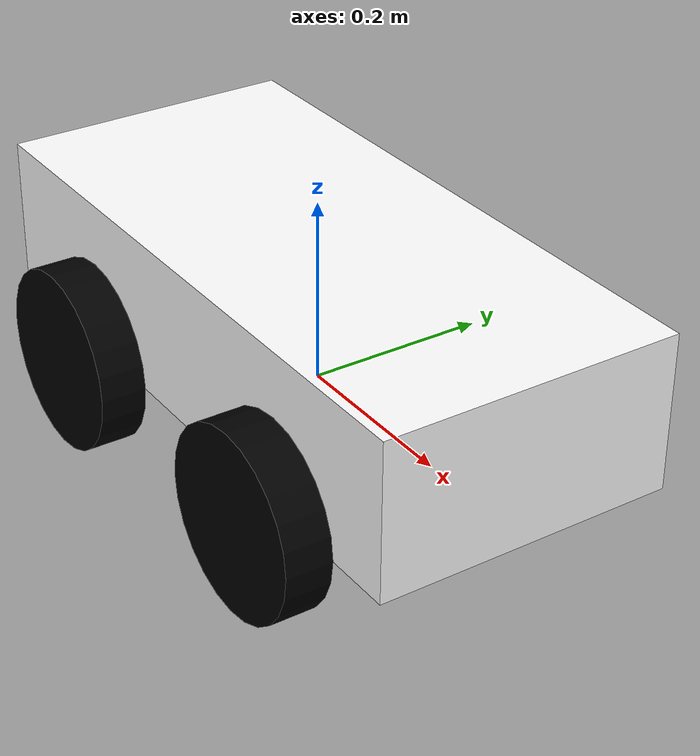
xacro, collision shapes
<?xml version="1.0"?>
<robot xmlns:xacro="http://www.ros.org/wiki/xacro" >

<material name="white">
    <color rgba="1 1 1 1"/>
</material>

<material name="orange">
     <color rgba="1 0.3 0.1 1"/>
</material>

<material name="blue">
    <color rgba="0.2 0.2 1 1"/>
</material>

<material name="black">
    <color rgba="0 0 0 1"/>
</material>

<!--BASE LINK-->

<link name="base_link">
</link>

<!--CHASSIS LINK-->
<joint name="chassis_joint" type="fixed">
    <parent link = "base_link"/>
    <child link = "chassis"/>
    <origin xyz ="0 0 0"/>
</joint>

<link name = "chassis">
<visual>
    <origin xyz= "0 0 0.085"/>
    <geometry>
        <mesh filename= "package://description2/meshes/Chassis.stl" scale="0.001 0.001 0.001"/>
    </geometry>
    <material name ="white"/>
</visual>
<collision>
    <origin xyz= "0 0 0.085"/>
    <geometry>
        <box size = "0.69804 0.325 0.17 "/>

    </geometry>
    <material name ="white"/>
    <inertial>
        <mass value="19.928" />
        <origin xyz="0 0 0" />
				<inertia ixx="0.286" ixy="0.0" ixz="0.0"
               iyy="1.109" iyz="0.0"
               izz="1.227" />
      </inertial>
</collision>
</link>

<gazebo reference = "chassis">
    <material>
        Gazebo/White
    </material>
</gazebo>

<!--LEFT WHEEL LINK FRONT-->
<joint name = "left_wheel_front_joint" type="continuous">
    <parent link ="base_link"/>
    <child link = "left_wheel_front_link"/>
    <origin xyz ="0.175 0.1875 0"/>
    <axis xyz = "0 1 0"/>
</joint>

<link name = "left_wheel_front_link">
<visual>

    <geometry>
        <mesh filename = "package://description2/meshes/wheels.stl" scale = "0.001 0.001 0.001"/>
    </geometry>
    <material name ="black"/>
</visual>

<collision>
    <origin xyz="0 0 0" rpy="-${pi/2} 0 0"/>
    <geometry>
        <cylinder radius = "0.1" length ="0.05"/>
    </geometry>
</collision>
<inertial>
    <mass value="1.420" />
    <origin xyz="0 0 0" />
            <inertia ixx="0.004" ixy="0.0" ixz="0.0"
           iyy="0.008" iyz="0.0"
           izz="0.004" />
  </inertial>
</link>

<gazebo reference = "left_wheel_front_link">
    <material>
        Gazebo/Black
    </material>
    <mu1 value=  "0.2"/>
    <mu2 value= "0.2"/>
</gazebo>

<!--LEFT WHEEL LINK BACK-->
<joint name = "left_wheel_back_joint" type="fixed">
    <parent link ="base_link"/>
    <child link = "left_wheel_back_link"/>
    <origin xyz ="-0.175 0.1875 0"/>
    <axis xyz = "0 1 0"/>
</joint>

<link name = "left_wheel_back_link">
<visual>

    <geometry>
        <mesh filename = "package://description2/meshes/wheels.stl" scale = "0.001 0.001 0.001"/>
    </geometry>
    <material name ="black"/>
</visual>
<collision>
    <origin xyz="0 0 0" rpy="-${pi/2} 0 0"/>
    <geometry>
        <cylinder radius = "0.1" length ="0.05"/>
    </geometry>
</collision>
<inertial>
    <mass value="1.420" />
    <origin xyz="0 0 0" />
            <inertia ixx="0.004" ixy="0.0" ixz="0.0"
           iyy="0.008" iyz="0.0"
           izz="0.004" />
  </inertial>
</link>
<gazebo reference = "left_wheel_back_link">
    <material>
        Gazebo/Black
    </material>

    <mu1 value=  "0"/>
    <mu2 value= "0"/>
</gazebo>

<!--RIGHT WHEEL LINK FRONT-->
<joint name = "right_wheel_front_joint" type="fixed">
    <parent link ="base_link"/>
    <child link = "right_wheel_front_link"/>
    <origin xyz ="0.175 -0.1875 0"/>
    <axis xyz = "0 1 0"/>
</joint>

<link name = "right_wheel_front_link">
<visual>

    <geometry>
        <mesh filename = "package://description2/meshes/wheels.stl" scale = "0.001 0.001 0.001"/>
    </geometry>
    <material name ="black"/>
</visual>
<collision>
    <origin xyz="0 0 0" rpy="${pi/2} 0 0"/>
    <geometry>
        <cylinder radius = "0.1" length ="0.05"/>
    </geometry>
</collision>
<inertial>
    <mass value="1.420" />
    <origin xyz="0 0 0" />
            <inertia ixx="0.004" ixy="0.0" ixz="0.0"
           iyy="0.008" iyz="0.0"
           izz="0.004" />
  </inertial>
</link>
<gazebo reference = "right_wheel_front_link">
    <material>
        Gazebo/Black
    </material>
    <mu1 value=  "0"/>
    <mu2 value= "0"/>
</gazebo>

<!--RIGHT WHEEL LINK BACK-->
<joint name = "right_wheel_back_joint" type="continuous">
    <parent link ="base_link"/>
    <child link = "right_wheel_back_link"/>
    <origin xyz ="-0.175 -0.1875 0"/>
    <axis xyz = "0 1 0"/>
</joint>

<link name = "right_wheel_back_link">
<visual>

    <geometry>
        <mesh filename = "package://description2/meshes/wheels.stl" scale = "0.001 0.001 0.001"/>
    </geometry>
    <material name ="black"/>
</visual>
<collision>
    <origin xyz="0 0 0" rpy="${pi/2} 0 0"/>
    <geometry>
        <cylinder radius = "0.1" length ="0.05"/>
    </geometry>
</collision>
<inertial>
    <mass value="1.420" />
    <origin xyz="0 0 0" />
            <inertia ixx="0.004" ixy="0.0" ixz="0.0"
           iyy="0.008" iyz="0.0"
           izz="0.004" />
  </inertial>
</link>
<gazebo reference = "right_wheel_back_link">
    <material>
        Gazebo/Black
    </material>
    <mu1 value=  "0.2"/>
    <mu2 value= "0.2"/>

</gazebo>

</robot>
